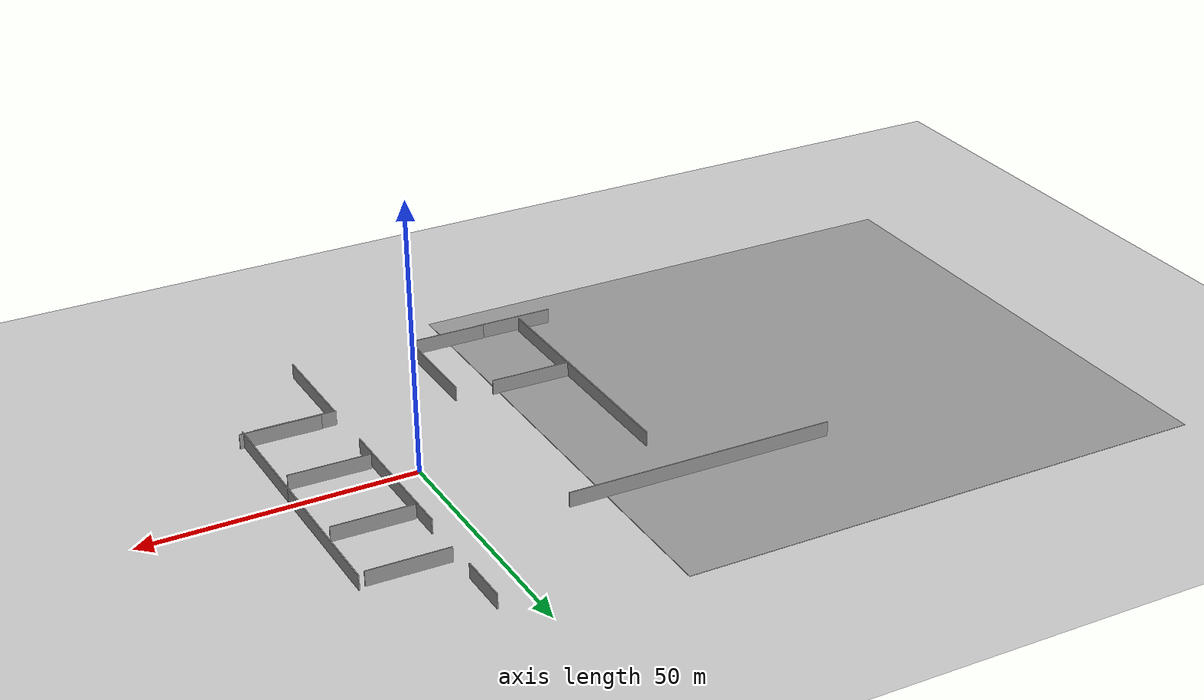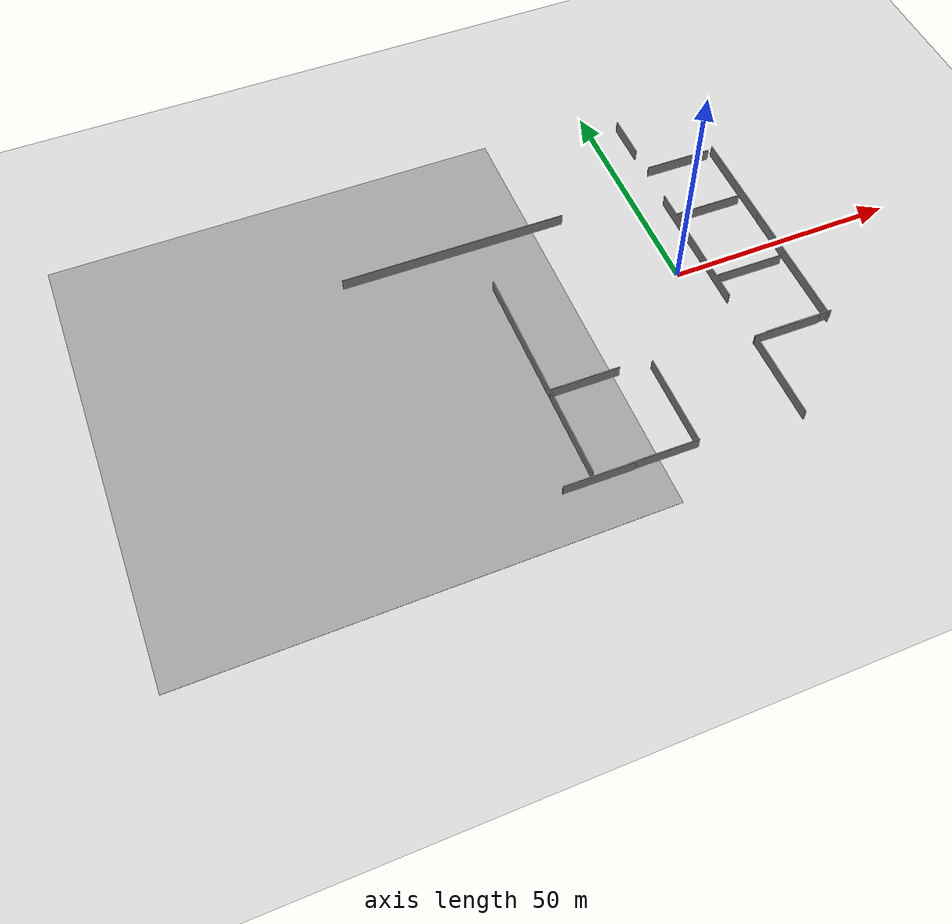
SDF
<sdf version="1.7">
 <world name="default">
  <light name="sun" type="directional">
   <pose>0 0 10 0 -0 0</pose>
   <diffuse>0.8 0.8 0.8 1</diffuse>
   <specular>0.2 0.2 0.2 1</specular>
   <attenuation>
    <range>1000</range>
    <constant>0.9</constant>
    <linear>0.01</linear>
    <quadratic>0.001</quadratic>
   </attenuation>
   <direction>-0.5 0.1 -0.9</direction>
   <spot><inner_angle>0</inner_angle><outer_angle>0</outer_angle><falloff>0</falloff></spot>
  </light>
  <model name="ground_plane">
   <static>1</static>
   <link name="link">
    <collision name="collision">
     <geometry><plane><normal>0 0 1</normal><size>100 100</size></plane></geometry>
     <surface><friction><ode><mu>100</mu><mu2>50</mu2></ode></friction></surface>
    </collision>
    <visual name="visual">
     <cast_shadows>0</cast_shadows>
     <geometry><plane><normal>0 0 1</normal><size>100 100</size></plane></geometry>
     <material>
      <script><uri>file://media/materials/scripts/gazebo.material</uri><name>Gazebo/Grey</name></script>
     </material>
    </visual>
   </link>
  </model>
  <gravity>0 0 -9.8</gravity>
  <magnetic_field>6e-06 2.3e-05 -4.2e-05</magnetic_field>
  <atmosphere type="adiabatic"/>
  <physics type="ode">
   <max_step_size>0.001</max_step_size>
   <real_time_factor>1</real_time_factor>
   <real_time_update_rate>1000</real_time_update_rate>
  </physics>
  <scene><ambient>0.4 0.4 0.4 1</ambient><background>0.7 0.7 0.7 1</background><shadows>1</shadows></scene>
  <audio><device>default</device></audio>
  <spherical_coordinates>
   <surface_model>EARTH_WGS84</surface_model>
   <latitude_deg>0</latitude_deg>
   <longitude_deg>0</longitude_deg>
   <elevation>0</elevation>
   <heading_deg>0</heading_deg>
  </spherical_coordinates>
  <model name="grey_wall">
   <link name="link">
    <pose>0 0 1.4 0 -0 0</pose>
    <inertial>
     <mass>1</mass>
     <inertia><ixx>1</ixx><ixy>0</ixy><ixz>0</ixz><iyy>1</iyy><iyz>0</iyz><izz>1</izz></inertia>
    </inertial>
    <visual name="visual">
     <cast_shadows>0</cast_shadows>
     <geometry><box><size>30 0.2 2.8</size></box></geometry>
     <material>
      <script>
       <uri>model://grey_wall/materials/scripts</uri>
       <uri>model://grey_wall/materials/textures</uri>
       <name>vrc/grey_wall</name>
      </script>
      <shader type="pixel"><normal_map>__default__</normal_map></shader>
      <ambient>1 1 1 1</ambient>
      <diffuse>1 1 1 1</diffuse>
      <specular>0 0 0 1</specular>
      <emissive>0 0 0 1</emissive>
     </material>
    </visual>
    <collision name="collision">
     <geometry><box><size>7.5 0.2 2.8</size></box></geometry>
     <surface>
      <friction>
       <ode><mu>1</mu><mu2>1</mu2><fdir1>0 0 0</fdir1><slip1>0</slip1><slip2>0</slip2></ode>
       <torsional>
        <coefficient>1</coefficient>
        <patch_radius>0</patch_radius>
        <surface_radius>0</surface_radius>
        <use_patch_radius>1</use_patch_radius>
        <ode><slip>0</slip></ode>
       </torsional>
      </friction>
      <bounce><restitution_coefficient>0</restitution_coefficient><threshold>1e+06</threshold></bounce>
      <contact>
       <collide_without_contact>0</collide_without_contact>
       <collide_without_contact_bitmask>1</collide_without_contact_bitmask>
       <collide_bitmask>1</collide_bitmask>
       <ode>
        <soft_cfm>0</soft_cfm>
        <soft_erp>0.2</soft_erp>
        <kp>1e+13</kp>
        <kd>1</kd>
        <max_vel>0.01</max_vel>
        <min_depth>0</min_depth>
       </ode>
       <bullet>
        <split_impulse>1</split_impulse>
        <split_impulse_penetration_threshold>-0.01</split_impulse_penetration_threshold>
        <soft_cfm>0</soft_cfm>
        <soft_erp>0.2</soft_erp>
        <kp>1e+13</kp>
        <kd>1</kd>
       </bullet>
      </contact>
     </surface>
    </collision>
   </link>
   <static>1</static>
   <pose>6.22446 4.05369 0 0 0 -1.56914</pose>
  </model>
  <model name="grey_wall_clone_0">
   <link name="link">
    <pose>0 0 1.4 0 -0 0</pose>
    <inertial>
     <mass>1</mass>
     <inertia><ixx>1</ixx><ixy>0</ixy><ixz>0</ixz><iyy>1</iyy><iyz>0</iyz><izz>1</izz></inertia>
    </inertial>
    <visual name="visual">
     <cast_shadows>0</cast_shadows>
     <geometry><box><size>10 0.2 2.8</size></box></geometry>
     <material>
      <script>
       <uri>model://grey_wall/materials/scripts</uri>
       <uri>model://grey_wall/materials/textures</uri>
       <name>vrc/grey_wall</name>
      </script>
      <shader type="pixel"><normal_map>__default__</normal_map></shader>
      <ambient>1 1 1 1</ambient>
      <diffuse>1 1 1 1</diffuse>
      <specular>0 0 0 1</specular>
      <emissive>0 0 0 1</emissive>
     </material>
    </visual>
    <collision name="collision">
     <geometry><box><size>7.5 0.2 2.8</size></box></geometry>
     <surface>
      <friction>
       <ode><mu>1</mu><mu2>1</mu2><fdir1>0 0 0</fdir1><slip1>0</slip1><slip2>0</slip2></ode>
       <torsional>
        <coefficient>1</coefficient>
        <patch_radius>0</patch_radius>
        <surface_radius>0</surface_radius>
        <use_patch_radius>1</use_patch_radius>
        <ode><slip>0</slip></ode>
       </torsional>
      </friction>
      <bounce><restitution_coefficient>0</restitution_coefficient><threshold>1e+06</threshold></bounce>
      <contact>
       <collide_without_contact>0</collide_without_contact>
       <collide_without_contact_bitmask>1</collide_without_contact_bitmask>
       <collide_bitmask>1</collide_bitmask>
       <ode>
        <soft_cfm>0</soft_cfm>
        <soft_erp>0.2</soft_erp>
        <kp>1e+13</kp>
        <kd>1</kd>
        <max_vel>0.01</max_vel>
        <min_depth>0</min_depth>
       </ode>
       <bullet>
        <split_impulse>1</split_impulse>
        <split_impulse_penetration_threshold>-0.01</split_impulse_penetration_threshold>
        <soft_cfm>0</soft_cfm>
        <soft_erp>0.2</soft_erp>
        <kp>1e+13</kp>
        <kd>1</kd>
       </bullet>
      </contact>
     </surface>
    </collision>
   </link>
   <static>1</static>
   <pose>6.37465 38.7959 0 0 0 -1.56914</pose>
  </model>
  <model name="grey_wall_clone_1">
   <link name="link">
    <pose>0 0 1.4 0 -0 0</pose>
    <inertial>
     <mass>1</mass>
     <inertia><ixx>1</ixx><ixy>0</ixy><ixz>0</ixz><iyy>1</iyy><iyz>0</iyz><izz>1</izz></inertia>
    </inertial>
    <visual name="visual">
     <cast_shadows>0</cast_shadows>
     <geometry><box><size>30 0.2 2.8</size></box></geometry>
     <material>
      <script>
       <uri>model://grey_wall/materials/scripts</uri>
       <uri>model://grey_wall/materials/textures</uri>
       <name>vrc/grey_wall</name>
      </script>
      <shader type="pixel"><normal_map>__default__</normal_map></shader>
      <ambient>1 1 1 1</ambient>
      <diffuse>1 1 1 1</diffuse>
      <specular>0 0 0 1</specular>
      <emissive>0 0 0 1</emissive>
     </material>
    </visual>
    <collision name="collision">
     <geometry><box><size>7.5 0.2 2.8</size></box></geometry>
     <surface>
      <friction>
       <ode><mu>1</mu><mu2>1</mu2><fdir1>0 0 0</fdir1><slip1>0</slip1><slip2>0</slip2></ode>
       <torsional>
        <coefficient>1</coefficient>
        <patch_radius>0</patch_radius>
        <surface_radius>0</surface_radius>
        <use_patch_radius>1</use_patch_radius>
        <ode><slip>0</slip></ode>
       </torsional>
      </friction>
      <bounce><restitution_coefficient>0</restitution_coefficient><threshold>1e+06</threshold></bounce>
      <contact>
       <collide_without_contact>0</collide_without_contact>
       <collide_without_contact_bitmask>1</collide_without_contact_bitmask>
       <collide_bitmask>1</collide_bitmask>
       <ode>
        <soft_cfm>0</soft_cfm>
        <soft_erp>0.2</soft_erp>
        <kp>1e+13</kp>
        <kd>1</kd>
        <max_vel>0.01</max_vel>
        <min_depth>0</min_depth>
       </ode>
       <bullet>
        <split_impulse>1</split_impulse>
        <split_impulse_penetration_threshold>-0.01</split_impulse_penetration_threshold>
        <soft_cfm>0</soft_cfm>
        <soft_erp>0.2</soft_erp>
        <kp>1e+13</kp>
        <kd>1</kd>
       </bullet>
      </contact>
     </surface>
    </collision>
   </link>
   <static>1</static>
   <pose>22.9396 13.6555 0 0 0 -1.56914</pose>
  </model>
  <model name="grey_wall_clone">
   <link name="link">
    <pose>0 0 1.4 0 -0 0</pose>
    <inertial>
     <mass>1</mass>
     <inertia><ixx>1</ixx><ixy>0</ixy><ixz>0</ixz><iyy>1</iyy><iyz>0</iyz><izz>1</izz></inertia>
    </inertial>
    <visual name="visual">
     <cast_shadows>0</cast_shadows>
     <geometry><box><size>15 0.2 2.8</size></box></geometry>
     <material>
      <script>
       <uri>model://grey_wall/materials/scripts</uri>
       <uri>model://grey_wall/materials/textures</uri>
       <name>vrc/grey_wall</name>
      </script>
      <shader type="pixel"><normal_map>__default__</normal_map></shader>
      <ambient>1 1 1 1</ambient>
      <diffuse>1 1 1 1</diffuse>
      <specular>0 0 0 1</specular>
      <emissive>0 0 0 1</emissive>
     </material>
    </visual>
    <collision name="collision">
     <geometry><box><size>7.5 0.2 2.8</size></box></geometry>
     <surface>
      <friction>
       <ode><mu>1</mu><mu2>1</mu2><fdir1>0 0 0</fdir1><slip1>0</slip1><slip2>0</slip2></ode>
       <torsional>
        <coefficient>1</coefficient>
        <patch_radius>0</patch_radius>
        <surface_radius>0</surface_radius>
        <use_patch_radius>1</use_patch_radius>
        <ode><slip>0</slip></ode>
       </torsional>
      </friction>
      <bounce><restitution_coefficient>0</restitution_coefficient><threshold>1e+06</threshold></bounce>
      <contact>
       <collide_without_contact>0</collide_without_contact>
       <collide_without_contact_bitmask>1</collide_without_contact_bitmask>
       <collide_bitmask>1</collide_bitmask>
       <ode>
        <soft_cfm>0</soft_cfm>
        <soft_erp>0.2</soft_erp>
        <kp>1e+13</kp>
        <kd>1</kd>
        <max_vel>0.01</max_vel>
        <min_depth>0</min_depth>
       </ode>
       <bullet>
        <split_impulse>1</split_impulse>
        <split_impulse_penetration_threshold>-0.01</split_impulse_penetration_threshold>
        <soft_cfm>0</soft_cfm>
        <soft_erp>0.2</soft_erp>
        <kp>1e+13</kp>
        <kd>1</kd>
       </bullet>
      </contact>
     </surface>
    </collision>
   </link>
   <static>1</static>
   <pose>14.1788 28.056 0 0 -0 3.12878</pose>
  </model>
  <model name="grey_wall_clone_clone">
   <link name="link">
    <pose>0 0 1.4 0 -0 0</pose>
    <inertial>
     <mass>1</mass>
     <inertia><ixx>1</ixx><ixy>0</ixy><ixz>0</ixz><iyy>1</iyy><iyz>0</iyz><izz>1</izz></inertia>
    </inertial>
    <visual name="visual">
     <cast_shadows>0</cast_shadows>
     <geometry><box><size>15 0.2 2.8</size></box></geometry>
     <material>
      <script>
       <uri>model://grey_wall/materials/scripts</uri>
       <uri>model://grey_wall/materials/textures</uri>
       <name>vrc/grey_wall</name>
      </script>
      <shader type="pixel"><normal_map>__default__</normal_map></shader>
      <ambient>1 1 1 1</ambient>
      <diffuse>1 1 1 1</diffuse>
      <specular>0 0 0 1</specular>
      <emissive>0 0 0 1</emissive>
     </material>
    </visual>
    <collision name="collision">
     <geometry><box><size>7.5 0.2 2.8</size></box></geometry>
     <surface>
      <friction>
       <ode><mu>1</mu><mu2>1</mu2><fdir1>0 0 0</fdir1><slip1>0</slip1><slip2>0</slip2></ode>
       <torsional>
        <coefficient>1</coefficient>
        <patch_radius>0</patch_radius>
        <surface_radius>0</surface_radius>
        <use_patch_radius>1</use_patch_radius>
        <ode><slip>0</slip></ode>
       </torsional>
      </friction>
      <bounce><restitution_coefficient>0</restitution_coefficient><threshold>1e+06</threshold></bounce>
      <contact>
       <collide_without_contact>0</collide_without_contact>
       <collide_without_contact_bitmask>1</collide_without_contact_bitmask>
       <collide_bitmask>1</collide_bitmask>
       <ode>
        <soft_cfm>0</soft_cfm>
        <soft_erp>0.2</soft_erp>
        <kp>1e+13</kp>
        <kd>1</kd>
        <max_vel>0.01</max_vel>
        <min_depth>0</min_depth>
       </ode>
       <bullet>
        <split_impulse>1</split_impulse>
        <split_impulse_penetration_threshold>-0.01</split_impulse_penetration_threshold>
        <soft_cfm>0</soft_cfm>
        <soft_erp>0.2</soft_erp>
        <kp>1e+13</kp>
        <kd>1</kd>
       </bullet>
      </contact>
     </surface>
    </collision>
   </link>
   <static>1</static>
   <pose>14.0039 13.2858 0 0 -0 3.12878</pose>
  </model>
  <model name="grey_wall_clone_clone_0">
   <link name="link">
    <pose>0 0 1.4 0 -0 0</pose>
    <inertial>
     <mass>1</mass>
     <inertia><ixx>1</ixx><ixy>0</ixy><ixz>0</ixz><iyy>1</iyy><iyz>0</iyz><izz>1</izz></inertia>
    </inertial>
    <visual name="visual">
     <cast_shadows>0</cast_shadows>
     <geometry><box><size>15 0.2 2.8</size></box></geometry>
     <material>
      <script>
       <uri>model://grey_wall/materials/scripts</uri>
       <uri>model://grey_wall/materials/textures</uri>
       <name>vrc/grey_wall</name>
      </script>
      <shader type="pixel"><normal_map>__default__</normal_map></shader>
      <ambient>1 1 1 1</ambient>
      <diffuse>1 1 1 1</diffuse>
      <specular>0 0 0 1</specular>
      <emissive>0 0 0 1</emissive>
     </material>
    </visual>
    <collision name="collision">
     <geometry><box><size>7.5 0.2 2.8</size></box></geometry>
     <surface>
      <friction>
       <ode><mu>1</mu><mu2>1</mu2><fdir1>0 0 0</fdir1><slip1>0</slip1><slip2>0</slip2></ode>
       <torsional>
        <coefficient>1</coefficient>
        <patch_radius>0</patch_radius>
        <surface_radius>0</surface_radius>
        <use_patch_radius>1</use_patch_radius>
        <ode><slip>0</slip></ode>
       </torsional>
      </friction>
      <bounce><restitution_coefficient>0</restitution_coefficient><threshold>1e+06</threshold></bounce>
      <contact>
       <collide_without_contact>0</collide_without_contact>
       <collide_without_contact_bitmask>1</collide_without_contact_bitmask>
       <collide_bitmask>1</collide_bitmask>
       <ode>
        <soft_cfm>0</soft_cfm>
        <soft_erp>0.2</soft_erp>
        <kp>1e+13</kp>
        <kd>1</kd>
        <max_vel>0.01</max_vel>
        <min_depth>0</min_depth>
       </ode>
       <bullet>
        <split_impulse>1</split_impulse>
        <split_impulse_penetration_threshold>-0.01</split_impulse_penetration_threshold>
        <soft_cfm>0</soft_cfm>
        <soft_erp>0.2</soft_erp>
        <kp>1e+13</kp>
        <kd>1</kd>
       </bullet>
      </contact>
     </surface>
    </collision>
   </link>
   <static>1</static>
   <pose>14.0718 -5.29256 0 0 -0 3.12878</pose>
  </model>
  <model name="ground_plane_0">
   <static>1</static>
   <link name="link">
    <collision name="collision">
     <geometry><plane><normal>0 0 1</normal><size>100 100</size></plane></geometry>
     <surface><friction><ode><mu>100</mu><mu2>50</mu2></ode></friction></surface>
    </collision>
    <visual name="visual">
     <cast_shadows>0</cast_shadows>
     <geometry><plane><normal>0 0 1</normal><size>100 100</size></plane></geometry>
     <material>
      <script><uri>file://media/materials/scripts/gazebo.material</uri><name>Gazebo/Grey</name></script>
     </material>
    </visual>
   </link>
   <pose>-73.9417 0.108172 0 0 -0 0</pose>
  </model>
  <model name="grey_wall_clone_2">
   <link name="link">
    <pose>0 0 1.4 0 -0 0</pose>
    <inertial>
     <mass>1</mass>
     <inertia><ixx>1</ixx><ixy>0</ixy><ixz>0</ixz><iyy>1</iyy><iyz>0</iyz><izz>1</izz></inertia>
    </inertial>
    <visual name="visual">
     <cast_shadows>0</cast_shadows>
     <geometry><box><size>30 0.2 2.8</size></box></geometry>
     <material>
      <script>
       <uri>model://grey_wall/materials/scripts</uri>
       <uri>model://grey_wall/materials/textures</uri>
       <name>vrc/grey_wall</name>
      </script>
      <shader type="pixel"><normal_map>__default__</normal_map></shader>
      <ambient>1 1 1 1</ambient>
      <diffuse>1 1 1 1</diffuse>
      <specular>0 0 0 1</specular>
      <emissive>0 0 0 1</emissive>
     </material>
    </visual>
    <collision name="collision">
     <geometry><box><size>7.5 0.2 2.8</size></box></geometry>
     <surface>
      <friction>
       <ode><mu>1</mu><mu2>1</mu2><fdir1>0 0 0</fdir1><slip1>0</slip1><slip2>0</slip2></ode>
       <torsional>
        <coefficient>1</coefficient>
        <patch_radius>0</patch_radius>
        <surface_radius>0</surface_radius>
        <use_patch_radius>1</use_patch_radius>
        <ode><slip>0</slip></ode>
       </torsional>
      </friction>
      <bounce><restitution_coefficient>0</restitution_coefficient><threshold>1e+06</threshold></bounce>
      <contact>
       <collide_without_contact>0</collide_without_contact>
       <collide_without_contact_bitmask>1</collide_without_contact_bitmask>
       <collide_bitmask>1</collide_bitmask>
       <ode>
        <soft_cfm>0</soft_cfm>
        <soft_erp>0.2</soft_erp>
        <kp>1e+13</kp>
        <kd>1</kd>
        <max_vel>0.01</max_vel>
        <min_depth>0</min_depth>
       </ode>
       <bullet>
        <split_impulse>1</split_impulse>
        <split_impulse_penetration_threshold>-0.01</split_impulse_penetration_threshold>
        <soft_cfm>0</soft_cfm>
        <soft_erp>0.2</soft_erp>
        <kp>1e+13</kp>
        <kd>1</kd>
       </bullet>
      </contact>
     </surface>
    </collision>
   </link>
   <static>1</static>
   <pose>-37.7666 -4.1461 0 0 0 -1.56914</pose>
  </model>
  <model name="grey_wall_clone_1_clone">
   <link name="link">
    <pose>0 0 1.4 0 -0 0</pose>
    <inertial>
     <mass>1</mass>
     <inertia><ixx>1</ixx><ixy>0</ixy><ixz>0</ixz><iyy>1</iyy><iyz>0</iyz><izz>1</izz></inertia>
    </inertial>
    <visual name="visual">
     <cast_shadows>0</cast_shadows>
     <geometry><box><size>50 0.2 2.8</size></box></geometry>
     <material>
      <script>
       <uri>model://grey_wall/materials/scripts</uri>
       <uri>model://grey_wall/materials/textures</uri>
       <name>vrc/grey_wall</name>
      </script>
      <shader type="pixel"><normal_map>__default__</normal_map></shader>
      <ambient>1 1 1 1</ambient>
      <diffuse>1 1 1 1</diffuse>
      <specular>0 0 0 1</specular>
      <emissive>0 0 0 1</emissive>
     </material>
    </visual>
    <collision name="collision">
     <geometry><box><size>7.5 0.2 2.8</size></box></geometry>
     <surface>
      <friction>
       <ode><mu>1</mu><mu2>1</mu2><fdir1>0 0 0</fdir1><slip1>0</slip1><slip2>0</slip2></ode>
       <torsional>
        <coefficient>1</coefficient>
        <patch_radius>0</patch_radius>
        <surface_radius>0</surface_radius>
        <use_patch_radius>1</use_patch_radius>
        <ode><slip>0</slip></ode>
       </torsional>
      </friction>
      <bounce><restitution_coefficient>0</restitution_coefficient><threshold>1e+06</threshold></bounce>
      <contact>
       <collide_without_contact>0</collide_without_contact>
       <collide_without_contact_bitmask>1</collide_without_contact_bitmask>
       <collide_bitmask>1</collide_bitmask>
       <ode>
        <soft_cfm>0</soft_cfm>
        <soft_erp>0.2</soft_erp>
        <kp>1e+13</kp>
        <kd>1</kd>
        <max_vel>0.01</max_vel>
        <min_depth>0</min_depth>
       </ode>
       <bullet>
        <split_impulse>1</split_impulse>
        <split_impulse_penetration_threshold>-0.01</split_impulse_penetration_threshold>
        <soft_cfm>0</soft_cfm>
        <soft_erp>0.2</soft_erp>
        <kp>1e+13</kp>
        <kd>1</kd>
       </bullet>
      </contact>
     </surface>
    </collision>
   </link>
   <static>1</static>
   <pose>-41.9782 22.6078 0 0 0 -0.009515</pose>
  </model>
  <model name="grey_wall_clone_3">
   <link name="link">
    <pose>0 0 1.4 0 -0 0</pose>
    <inertial>
     <mass>1</mass>
     <inertia><ixx>1</ixx><ixy>0</ixy><ixz>0</ixz><iyy>1</iyy><iyz>0</iyz><izz>1</izz></inertia>
    </inertial>
    <visual name="visual">
     <cast_shadows>0</cast_shadows>
     <geometry><box><size>20 0.2 2.8</size></box></geometry>
     <material>
      <script>
       <uri>model://grey_wall/materials/scripts</uri>
       <uri>model://grey_wall/materials/textures</uri>
       <name>vrc/grey_wall</name>
      </script>
      <shader type="pixel"><normal_map>__default__</normal_map></shader>
      <ambient>1 1 1 1</ambient>
      <diffuse>1 1 1 1</diffuse>
      <specular>0 0 0 1</specular>
      <emissive>0 0 0 1</emissive>
     </material>
    </visual>
    <collision name="collision">
     <geometry><box><size>7.5 0.2 2.8</size></box></geometry>
     <surface>
      <friction>
       <ode><mu>1</mu><mu2>1</mu2><fdir1>0 0 0</fdir1><slip1>0</slip1><slip2>0</slip2></ode>
       <torsional>
        <coefficient>1</coefficient>
        <patch_radius>0</patch_radius>
        <surface_radius>0</surface_radius>
        <use_patch_radius>1</use_patch_radius>
        <ode><slip>0</slip></ode>
       </torsional>
      </friction>
      <bounce><restitution_coefficient>0</restitution_coefficient><threshold>1e+06</threshold></bounce>
      <contact>
       <collide_without_contact>0</collide_without_contact>
       <collide_without_contact_bitmask>1</collide_without_contact_bitmask>
       <collide_bitmask>1</collide_bitmask>
       <ode>
        <soft_cfm>0</soft_cfm>
        <soft_erp>0.2</soft_erp>
        <kp>1e+13</kp>
        <kd>1</kd>
        <max_vel>0.01</max_vel>
        <min_depth>0</min_depth>
       </ode>
       <bullet>
        <split_impulse>1</split_impulse>
        <split_impulse_penetration_threshold>-0.01</split_impulse_penetration_threshold>
        <soft_cfm>0</soft_cfm>
        <soft_erp>0.2</soft_erp>
        <kp>1e+13</kp>
        <kd>1</kd>
       </bullet>
      </contact>
     </surface>
    </collision>
   </link>
   <static>1</static>
   <pose>-15.8863 -29.8909 0 0 0 -1.56914</pose>
  </model>
  <model name="grey_wall_clone_clone_0_clone">
   <link name="link">
    <pose>0 0 1.4 0 -0 0</pose>
    <inertial>
     <mass>1</mass>
     <inertia><ixx>1</ixx><ixy>0</ixy><ixz>0</ixz><iyy>1</iyy><iyz>0</iyz><izz>1</izz></inertia>
    </inertial>
    <visual name="visual">
     <cast_shadows>0</cast_shadows>
     <geometry><box><size>15 0.2 2.8</size></box></geometry>
     <material>
      <script>
       <uri>model://grey_wall/materials/scripts</uri>
       <uri>model://grey_wall/materials/textures</uri>
       <name>vrc/grey_wall</name>
      </script>
      <shader type="pixel"><normal_map>__default__</normal_map></shader>
      <ambient>1 1 1 1</ambient>
      <diffuse>1 1 1 1</diffuse>
      <specular>0 0 0 1</specular>
      <emissive>0 0 0 1</emissive>
     </material>
    </visual>
    <collision name="collision">
     <geometry><box><size>7.5 0.2 2.8</size></box></geometry>
     <surface>
      <friction>
       <ode><mu>1</mu><mu2>1</mu2><fdir1>0 0 0</fdir1><slip1>0</slip1><slip2>0</slip2></ode>
       <torsional>
        <coefficient>1</coefficient>
        <patch_radius>0</patch_radius>
        <surface_radius>0</surface_radius>
        <use_patch_radius>1</use_patch_radius>
        <ode><slip>0</slip></ode>
       </torsional>
      </friction>
      <bounce><restitution_coefficient>0</restitution_coefficient><threshold>1e+06</threshold></bounce>
      <contact>
       <collide_without_contact>0</collide_without_contact>
       <collide_without_contact_bitmask>1</collide_without_contact_bitmask>
       <collide_bitmask>1</collide_bitmask>
       <ode>
        <soft_cfm>0</soft_cfm>
        <soft_erp>0.2</soft_erp>
        <kp>1e+13</kp>
        <kd>1</kd>
        <max_vel>0.01</max_vel>
        <min_depth>0</min_depth>
       </ode>
       <bullet>
        <split_impulse>1</split_impulse>
        <split_impulse_penetration_threshold>-0.01</split_impulse_penetration_threshold>
        <soft_cfm>0</soft_cfm>
        <soft_erp>0.2</soft_erp>
        <kp>1e+13</kp>
        <kd>1</kd>
       </bullet>
      </contact>
     </surface>
    </collision>
   </link>
   <static>1</static>
   <pose>-23.1594 -39.881 0 0 -0 3.12878</pose>
  </model>
  <model name="grey_wall_clone_clone_0_clone_0">
   <link name="link">
    <pose>0 0 1.4 0 -0 0</pose>
    <inertial>
     <mass>1</mass>
     <inertia><ixx>1</ixx><ixy>0</ixy><ixz>0</ixz><iyy>1</iyy><iyz>0</iyz><izz>1</izz></inertia>
    </inertial>
    <visual name="visual">
     <cast_shadows>0</cast_shadows>
     <geometry><box><size>15 0.2 2.8</size></box></geometry>
     <material>
      <script>
       <uri>model://grey_wall/materials/scripts</uri>
       <uri>model://grey_wall/materials/textures</uri>
       <name>vrc/grey_wall</name>
      </script>
      <shader type="pixel"><normal_map>__default__</normal_map></shader>
      <ambient>1 1 1 1</ambient>
      <diffuse>1 1 1 1</diffuse>
      <specular>0 0 0 1</specular>
      <emissive>0 0 0 1</emissive>
     </material>
    </visual>
    <collision name="collision">
     <geometry><box><size>7.5 0.2 2.8</size></box></geometry>
     <surface>
      <friction>
       <ode><mu>1</mu><mu2>1</mu2><fdir1>0 0 0</fdir1><slip1>0</slip1><slip2>0</slip2></ode>
       <torsional>
        <coefficient>1</coefficient>
        <patch_radius>0</patch_radius>
        <surface_radius>0</surface_radius>
        <use_patch_radius>1</use_patch_radius>
        <ode><slip>0</slip></ode>
       </torsional>
      </friction>
      <bounce><restitution_coefficient>0</restitution_coefficient><threshold>1e+06</threshold></bounce>
      <contact>
       <collide_without_contact>0</collide_without_contact>
       <collide_without_contact_bitmask>1</collide_without_contact_bitmask>
       <collide_bitmask>1</collide_bitmask>
       <ode>
        <soft_cfm>0</soft_cfm>
        <soft_erp>0.2</soft_erp>
        <kp>1e+13</kp>
        <kd>1</kd>
        <max_vel>0.01</max_vel>
        <min_depth>0</min_depth>
       </ode>
       <bullet>
        <split_impulse>1</split_impulse>
        <split_impulse_penetration_threshold>-0.01</split_impulse_penetration_threshold>
        <soft_cfm>0</soft_cfm>
        <soft_erp>0.2</soft_erp>
        <kp>1e+13</kp>
        <kd>1</kd>
       </bullet>
      </contact>
     </surface>
    </collision>
   </link>
   <static>1</static>
   <pose>-36.7282 -39.8306 0 0 -0 3.12878</pose>
  </model>
  <model name="grey_wall_clone_clone_0_clone_1">
   <link name="link">
    <pose>0 0 1.4 0 -0 0</pose>
    <inertial>
     <mass>1</mass>
     <inertia><ixx>1</ixx><ixy>0</ixy><ixz>0</ixz><iyy>1</iyy><iyz>0</iyz><izz>1</izz></inertia>
    </inertial>
    <visual name="visual">
     <cast_shadows>0</cast_shadows>
     <geometry><box><size>15 0.2 2.8</size></box></geometry>
     <material>
      <script>
       <uri>model://grey_wall/materials/scripts</uri>
       <uri>model://grey_wall/materials/textures</uri>
       <name>vrc/grey_wall</name>
      </script>
      <shader type="pixel"><normal_map>__default__</normal_map></shader>
      <ambient>1 1 1 1</ambient>
      <diffuse>1 1 1 1</diffuse>
      <specular>0 0 0 1</specular>
      <emissive>0 0 0 1</emissive>
     </material>
    </visual>
    <collision name="collision">
     <geometry><box><size>7.5 0.2 2.8</size></box></geometry>
     <surface>
      <friction>
       <ode><mu>1</mu><mu2>1</mu2><fdir1>0 0 0</fdir1><slip1>0</slip1><slip2>0</slip2></ode>
       <torsional>
        <coefficient>1</coefficient>
        <patch_radius>0</patch_radius>
        <surface_radius>0</surface_radius>
        <use_patch_radius>1</use_patch_radius>
        <ode><slip>0</slip></ode>
       </torsional>
      </friction>
      <bounce><restitution_coefficient>0</restitution_coefficient><threshold>1e+06</threshold></bounce>
      <contact>
       <collide_without_contact>0</collide_without_contact>
       <collide_without_contact_bitmask>1</collide_without_contact_bitmask>
       <collide_bitmask>1</collide_bitmask>
       <ode>
        <soft_cfm>0</soft_cfm>
        <soft_erp>0.2</soft_erp>
        <kp>1e+13</kp>
        <kd>1</kd>
        <max_vel>0.01</max_vel>
        <min_depth>0</min_depth>
       </ode>
       <bullet>
        <split_impulse>1</split_impulse>
        <split_impulse_penetration_threshold>-0.01</split_impulse_penetration_threshold>
        <soft_cfm>0</soft_cfm>
        <soft_erp>0.2</soft_erp>
        <kp>1e+13</kp>
        <kd>1</kd>
       </bullet>
      </contact>
     </surface>
    </collision>
   </link>
   <static>1</static>
   <pose>-30.1721 -18.8063 0 0 -0 3.12878</pose>
  </model>
  <model name="grey_wall_clone_clone_0_clone_2">
   <link name="link">
    <pose>0 0 1.4 0 -0 0</pose>
    <inertial>
     <mass>1</mass>
     <inertia><ixx>1</ixx><ixy>0</ixy><ixz>0</ixz><iyy>1</iyy><iyz>0</iyz><izz>1</izz></inertia>
    </inertial>
    <visual name="visual">
     <cast_shadows>0</cast_shadows>
     <geometry><box><size>15 0.2 2.8</size></box></geometry>
     <material>
      <script>
       <uri>model://grey_wall/materials/scripts</uri>
       <uri>model://grey_wall/materials/textures</uri>
       <name>vrc/grey_wall</name>
      </script>
      <shader type="pixel"><normal_map>__default__</normal_map></shader>
      <ambient>1 1 1 1</ambient>
      <diffuse>1 1 1 1</diffuse>
      <specular>0 0 0 1</specular>
      <emissive>0 0 0 1</emissive>
     </material>
    </visual>
    <collision name="collision">
     <geometry><box><size>7.5 0.2 2.8</size></box></geometry>
     <surface>
      <friction>
       <ode><mu>1</mu><mu2>1</mu2><fdir1>0 0 0</fdir1><slip1>0</slip1><slip2>0</slip2></ode>
       <torsional>
        <coefficient>1</coefficient>
        <patch_radius>0</patch_radius>
        <surface_radius>0</surface_radius>
        <use_patch_radius>1</use_patch_radius>
        <ode><slip>0</slip></ode>
       </torsional>
      </friction>
      <bounce><restitution_coefficient>0</restitution_coefficient><threshold>1e+06</threshold></bounce>
      <contact>
       <collide_without_contact>0</collide_without_contact>
       <collide_without_contact_bitmask>1</collide_without_contact_bitmask>
       <collide_bitmask>1</collide_bitmask>
       <ode>
        <soft_cfm>0</soft_cfm>
        <soft_erp>0.2</soft_erp>
        <kp>1e+13</kp>
        <kd>1</kd>
        <max_vel>0.01</max_vel>
        <min_depth>0</min_depth>
       </ode>
       <bullet>
        <split_impulse>1</split_impulse>
        <split_impulse_penetration_threshold>-0.01</split_impulse_penetration_threshold>
        <soft_cfm>0</soft_cfm>
        <soft_erp>0.2</soft_erp>
        <kp>1e+13</kp>
        <kd>1</kd>
       </bullet>
      </contact>
     </surface>
    </collision>
   </link>
   <static>1</static>
   <pose>13.55 -22.2945 0 0 -0 3.12878</pose>
  </model>
  <model name="grey_wall_clone_1_clone_0">
   <link name="link">
    <pose>0 0 1.4 0 -0 0</pose>
    <inertial>
     <mass>1</mass>
     <inertia><ixx>1</ixx><ixy>0</ixy><ixz>0</ixz><iyy>1</iyy><iyz>0</iyz><izz>1</izz></inertia>
    </inertial>
    <visual name="visual">
     <cast_shadows>0</cast_shadows>
     <geometry><box><size>30 0.2 2.8</size></box></geometry>
     <material>
      <script>
       <uri>model://grey_wall/materials/scripts</uri>
       <uri>model://grey_wall/materials/textures</uri>
       <name>vrc/grey_wall</name>
      </script>
      <shader type="pixel"><normal_map>__default__</normal_map></shader>
      <ambient>1 1 1 1</ambient>
      <diffuse>1 1 1 1</diffuse>
      <specular>0 0 0 1</specular>
      <emissive>0 0 0 1</emissive>
     </material>
    </visual>
    <collision name="collision">
     <geometry><box><size>7.5 0.2 2.8</size></box></geometry>
     <surface>
      <friction>
       <ode><mu>1</mu><mu2>1</mu2><fdir1>0 0 0</fdir1><slip1>0</slip1><slip2>0</slip2></ode>
       <torsional>
        <coefficient>1</coefficient>
        <patch_radius>0</patch_radius>
        <surface_radius>0</surface_radius>
        <use_patch_radius>1</use_patch_radius>
        <ode><slip>0</slip></ode>
       </torsional>
      </friction>
      <bounce><restitution_coefficient>0</restitution_coefficient><threshold>1e+06</threshold></bounce>
      <contact>
       <collide_without_contact>0</collide_without_contact>
       <collide_without_contact_bitmask>1</collide_without_contact_bitmask>
       <collide_bitmask>1</collide_bitmask>
       <ode>
        <soft_cfm>0</soft_cfm>
        <soft_erp>0.2</soft_erp>
        <kp>1e+13</kp>
        <kd>1</kd>
        <max_vel>0.01</max_vel>
        <min_depth>0</min_depth>
       </ode>
       <bullet>
        <split_impulse>1</split_impulse>
        <split_impulse_penetration_threshold>-0.01</split_impulse_penetration_threshold>
        <soft_cfm>0</soft_cfm>
        <soft_erp>0.2</soft_erp>
        <kp>1e+13</kp>
        <kd>1</kd>
       </bullet>
      </contact>
     </surface>
    </collision>
   </link>
   <static>1</static>
   <pose>22.9258 -7.99486 0 0 0 -1.56914</pose>
  </model>
  <model name="grey_wall_clone_clone_0_clone_2_clone">
   <link name="link">
    <pose>0 0 1.4 0 -0 0</pose>
    <inertial>
     <mass>1</mass>
     <inertia><ixx>1</ixx><ixy>0</ixy><ixz>0</ixz><iyy>1</iyy><iyz>0</iyz><izz>1</izz></inertia>
    </inertial>
    <visual name="visual">
     <cast_shadows>0</cast_shadows>
     <geometry><box><size>15 0.2 2.8</size></box></geometry>
     <material>
      <script>
       <uri>model://grey_wall/materials/scripts</uri>
       <uri>model://grey_wall/materials/textures</uri>
       <name>vrc/grey_wall</name>
      </script>
      <shader type="pixel"><normal_map>__default__</normal_map></shader>
      <ambient>1 1 1 1</ambient>
      <diffuse>1 1 1 1</diffuse>
      <specular>0 0 0 1</specular>
      <emissive>0 0 0 1</emissive>
     </material>
    </visual>
    <collision name="collision">
     <geometry><box><size>7.5 0.2 2.8</size></box></geometry>
     <surface>
      <friction>
       <ode><mu>1</mu><mu2>1</mu2><fdir1>0 0 0</fdir1><slip1>0</slip1><slip2>0</slip2></ode>
       <torsional>
        <coefficient>1</coefficient>
        <patch_radius>0</patch_radius>
        <surface_radius>0</surface_radius>
        <use_patch_radius>1</use_patch_radius>
        <ode><slip>0</slip></ode>
       </torsional>
      </friction>
      <bounce><restitution_coefficient>0</restitution_coefficient><threshold>1e+06</threshold></bounce>
      <contact>
       <collide_without_contact>0</collide_without_contact>
       <collide_without_contact_bitmask>1</collide_without_contact_bitmask>
       <collide_bitmask>1</collide_bitmask>
       <ode>
        <soft_cfm>0</soft_cfm>
        <soft_erp>0.2</soft_erp>
        <kp>1e+13</kp>
        <kd>1</kd>
        <max_vel>0.01</max_vel>
        <min_depth>0</min_depth>
       </ode>
       <bullet>
        <split_impulse>1</split_impulse>
        <split_impulse_penetration_threshold>-0.01</split_impulse_penetration_threshold>
        <soft_cfm>0</soft_cfm>
        <soft_erp>0.2</soft_erp>
        <kp>1e+13</kp>
        <kd>1</kd>
       </bullet>
      </contact>
     </surface>
    </collision>
   </link>
   <static>1</static>
   <pose>16.3126 -22.1569 0 0 -0 3.12878</pose>
  </model>
  <model name="grey_wall_clone_3_clone">
   <link name="link">
    <pose>0 0 1.4 0 -0 0</pose>
    <inertial>
     <mass>1</mass>
     <inertia><ixx>1</ixx><ixy>0</ixy><ixz>0</ixz><iyy>1</iyy><iyz>0</iyz><izz>1</izz></inertia>
    </inertial>
    <visual name="visual">
     <cast_shadows>0</cast_shadows>
     <geometry><box><size>20 0.2 2.8</size></box></geometry>
     <material>
      <script>
       <uri>model://grey_wall/materials/scripts</uri>
       <uri>model://grey_wall/materials/textures</uri>
       <name>vrc/grey_wall</name>
      </script>
      <shader type="pixel"><normal_map>__default__</normal_map></shader>
      <ambient>1 1 1 1</ambient>
      <diffuse>1 1 1 1</diffuse>
      <specular>0 0 0 1</specular>
      <emissive>0 0 0 1</emissive>
     </material>
    </visual>
    <collision name="collision">
     <geometry><box><size>7.5 0.2 2.8</size></box></geometry>
     <surface>
      <friction>
       <ode><mu>1</mu><mu2>1</mu2><fdir1>0 0 0</fdir1><slip1>0</slip1><slip2>0</slip2></ode>
       <torsional>
        <coefficient>1</coefficient>
        <patch_radius>0</patch_radius>
        <surface_radius>0</surface_radius>
        <use_patch_radius>1</use_patch_radius>
        <ode><slip>0</slip></ode>
       </torsional>
      </friction>
      <bounce><restitution_coefficient>0</restitution_coefficient><threshold>1e+06</threshold></bounce>
      <contact>
       <collide_without_contact>0</collide_without_contact>
       <collide_without_contact_bitmask>1</collide_without_contact_bitmask>
       <collide_bitmask>1</collide_bitmask>
       <ode>
        <soft_cfm>0</soft_cfm>
        <soft_erp>0.2</soft_erp>
        <kp>1e+13</kp>
        <kd>1</kd>
        <max_vel>0.01</max_vel>
        <min_depth>0</min_depth>
       </ode>
       <bullet>
        <split_impulse>1</split_impulse>
        <split_impulse_penetration_threshold>-0.01</split_impulse_penetration_threshold>
        <soft_cfm>0</soft_cfm>
        <soft_erp>0.2</soft_erp>
        <kp>1e+13</kp>
        <kd>1</kd>
       </bullet>
      </contact>
     </surface>
    </collision>
   </link>
   <static>1</static>
   <pose>-37.7088 -28.948 0 0 0 -1.56914</pose>
  </model>
  <model name="grey_wall_clone_3_clone_clone">
   <link name="link">
    <pose>0 0 1.4 0 -0 0</pose>
    <inertial>
     <mass>1</mass>
     <inertia><ixx>1</ixx><ixy>0</ixy><ixz>0</ixz><iyy>1</iyy><iyz>0</iyz><izz>1</izz></inertia>
    </inertial>
    <visual name="visual">
     <cast_shadows>0</cast_shadows>
     <geometry><box><size>20 0.2 2.8</size></box></geometry>
     <material>
      <script>
       <uri>model://grey_wall/materials/scripts</uri>
       <uri>model://grey_wall/materials/textures</uri>
       <name>vrc/grey_wall</name>
      </script>
      <shader type="pixel"><normal_map>__default__</normal_map></shader>
      <ambient>1 1 1 1</ambient>
      <diffuse>1 1 1 1</diffuse>
      <specular>0 0 0 1</specular>
      <emissive>0 0 0 1</emissive>
     </material>
    </visual>
    <collision name="collision">
     <geometry><box><size>7.5 0.2 2.8</size></box></geometry>
     <surface>
      <friction>
       <ode><mu>1</mu><mu2>1</mu2><fdir1>0 0 0</fdir1><slip1>0</slip1><slip2>0</slip2></ode>
       <torsional>
        <coefficient>1</coefficient>
        <patch_radius>0</patch_radius>
        <surface_radius>0</surface_radius>
        <use_patch_radius>1</use_patch_radius>
        <ode><slip>0</slip></ode>
       </torsional>
      </friction>
      <bounce><restitution_coefficient>0</restitution_coefficient><threshold>1e+06</threshold></bounce>
      <contact>
       <collide_without_contact>0</collide_without_contact>
       <collide_without_contact_bitmask>1</collide_without_contact_bitmask>
       <collide_bitmask>1</collide_bitmask>
       <ode>
        <soft_cfm>0</soft_cfm>
        <soft_erp>0.2</soft_erp>
        <kp>1e+13</kp>
        <kd>1</kd>
        <max_vel>0.01</max_vel>
        <min_depth>0</min_depth>
       </ode>
       <bullet>
        <split_impulse>1</split_impulse>
        <split_impulse_penetration_threshold>-0.01</split_impulse_penetration_threshold>
        <soft_cfm>0</soft_cfm>
        <soft_erp>0.2</soft_erp>
        <kp>1e+13</kp>
        <kd>1</kd>
       </bullet>
      </contact>
     </surface>
    </collision>
   </link>
   <static>1</static>
   <pose>6.31198 -32.1369 0 0 0 -1.56914</pose>
  </model>
 </world>
</sdf>
